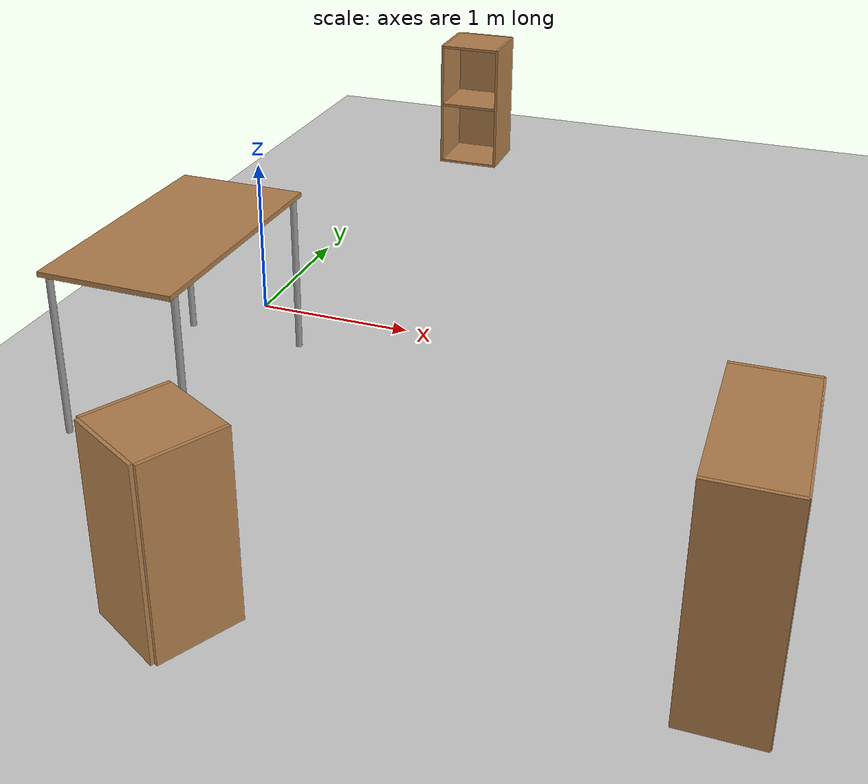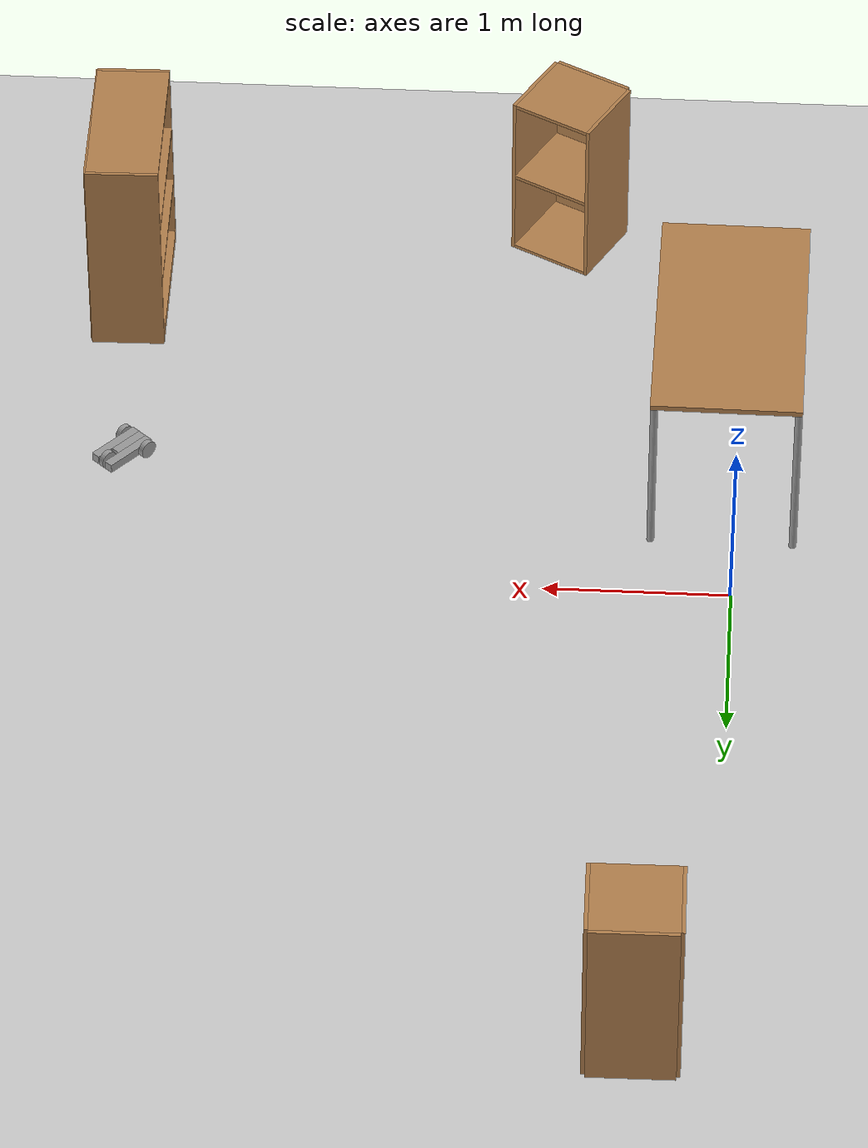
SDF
<sdf version="1.6">
 <world name="default">
  <model name="ground_plane">
   <static>1</static>
   <link name="link">
    <collision name="collision">
     <geometry><plane><normal>0 0 1</normal><size>100 100</size></plane></geometry>
     <surface><friction><ode><mu>100</mu><mu2>50</mu2></ode></friction></surface>
    </collision>
    <visual name="visual">
     <cast_shadows>0</cast_shadows>
     <geometry><plane><normal>0 0 1</normal><size>100 100</size></plane></geometry>
     <material>
      <script><uri>file://media/materials/scripts/gazebo.material</uri><name>Gazebo/Grey</name></script>
     </material>
    </visual>
   </link>
  </model>
  <model name="table">
   <static>1</static>
   <link name="link">
    <collision name="surface">
     <pose>0 0 1 0 -0 0</pose>
     <geometry><box><size>1.5 0.8 0.03</size></box></geometry>
     <surface><friction><ode><mu>0.6</mu><mu2>0.6</mu2></ode></friction></surface>
    </collision>
    <visual name="visual1">
     <pose>0 0 1 0 -0 0</pose>
     <geometry><box><size>1.5 0.8 0.03</size></box></geometry>
     <material>
      <script><uri>file://media/materials/scripts/gazebo.material</uri><name>Gazebo/Wood</name></script>
     </material>
    </visual>
    <collision name="front_left_leg">
     <pose>0.68 0.38 0.5 0 -0 0</pose>
     <geometry><cylinder><radius>0.02</radius><length>1</length></cylinder></geometry>
    </collision>
    <visual name="front_left_leg">
     <pose>0.68 0.38 0.5 0 -0 0</pose>
     <geometry><cylinder><radius>0.02</radius><length>1</length></cylinder></geometry>
     <material>
      <script><uri>file://media/materials/scripts/gazebo.material</uri><name>Gazebo/Grey</name></script>
     </material>
    </visual>
    <collision name="front_right_leg">
     <pose>0.68 -0.38 0.5 0 -0 0</pose>
     <geometry><cylinder><radius>0.02</radius><length>1</length></cylinder></geometry>
    </collision>
    <visual name="front_right_leg">
     <pose>0.68 -0.38 0.5 0 -0 0</pose>
     <geometry><cylinder><radius>0.02</radius><length>1</length></cylinder></geometry>
     <material>
      <script><uri>file://media/materials/scripts/gazebo.material</uri><name>Gazebo/Grey</name></script>
     </material>
    </visual>
    <collision name="back_right_leg">
     <pose>-0.68 -0.38 0.5 0 -0 0</pose>
     <geometry><cylinder><radius>0.02</radius><length>1</length></cylinder></geometry>
    </collision>
    <visual name="back_right_leg">
     <pose>-0.68 -0.38 0.5 0 -0 0</pose>
     <geometry><cylinder><radius>0.02</radius><length>1</length></cylinder></geometry>
     <material>
      <script><uri>file://media/materials/scripts/gazebo.material</uri><name>Gazebo/Grey</name></script>
     </material>
    </visual>
    <collision name="back_left_leg">
     <pose>-0.68 0.38 0.5 0 -0 0</pose>
     <geometry><cylinder><radius>0.02</radius><length>1</length></cylinder></geometry>
    </collision>
    <visual name="back_left_leg">
     <pose>-0.68 0.38 0.5 0 -0 0</pose>
     <geometry><cylinder><radius>0.02</radius><length>1</length></cylinder></geometry>
     <material>
      <script><uri>file://media/materials/scripts/gazebo.material</uri><name>Gazebo/Grey</name></script>
     </material>
    </visual>
   </link>
   <pose>0.053466 -1.09473 0 0 0 -1.58225</pose>
  </model>
  <model name="bookshelf">
   <static>1</static>
   <link name="link">
    <inertial><mass>1</mass></inertial>
    <collision name="back">
     <pose>0 0.005 0.6 0 -0 0</pose>
     <geometry><box><size>0.9 0.01 1.2</size></box></geometry>
    </collision>
    <visual name="visual1">
     <pose>0 0.005 0.6 0 -0 0</pose>
     <geometry><box><size>0.9 0.01 1.2</size></box></geometry>
     <material>
      <script><uri>file://media/materials/scripts/gazebo.material</uri><name>Gazebo/Wood</name></script>
     </material>
    </visual>
    <collision name="left_side">
     <pose>0.45 -0.195 0.6 0 -0 0</pose>
     <geometry><box><size>0.02 0.4 1.2</size></box></geometry>
    </collision>
    <visual name="visual2">
     <pose>0.45 -0.195 0.6 0 -0 0</pose>
     <geometry><box><size>0.02 0.4 1.2</size></box></geometry>
     <material>
      <script><uri>file://media/materials/scripts/gazebo.material</uri><name>Gazebo/Wood</name></script>
     </material>
    </visual>
    <collision name="right_side">
     <pose>-0.45 -0.195 0.6 0 -0 0</pose>
     <geometry><box><size>0.02 0.4 1.2</size></box></geometry>
    </collision>
    <visual name="visual3">
     <pose>-0.45 -0.195 0.6 0 -0 0</pose>
     <geometry><box><size>0.02 0.4 1.2</size></box></geometry>
     <material>
      <script><uri>file://media/materials/scripts/gazebo.material</uri><name>Gazebo/Wood</name></script>
     </material>
    </visual>
    <collision name="bottom">
     <pose>0 -0.195 0.03 0 -0 0</pose>
     <geometry><box><size>0.88 0.4 0.06</size></box></geometry>
    </collision>
    <visual name="visual4">
     <pose>0 -0.195 0.03 0 -0 0</pose>
     <geometry><box><size>0.88 0.4 0.06</size></box></geometry>
     <material>
      <script><uri>file://media/materials/scripts/gazebo.material</uri><name>Gazebo/Wood</name></script>
     </material>
    </visual>
    <collision name="top">
     <pose>0 -0.195 1.19 0 -0 0</pose>
     <geometry><box><size>0.88 0.4 0.02</size></box></geometry>
    </collision>
    <visual name="visual5">
     <pose>0 -0.195 1.19 0 -0 0</pose>
     <geometry><box><size>0.88 0.4 0.02</size></box></geometry>
     <material>
      <script><uri>file://media/materials/scripts/gazebo.material</uri><name>Gazebo/Wood</name></script>
     </material>
    </visual>
    <collision name="low_shelf">
     <pose>0 -0.195 0.43 0 -0 0</pose>
     <geometry><box><size>0.88 0.4 0.02</size></box></geometry>
    </collision>
    <visual name="visual6">
     <pose>0 -0.195 0.43 0 -0 0</pose>
     <geometry><box><size>0.88 0.4 0.02</size></box></geometry>
     <material>
      <script><uri>file://media/materials/scripts/gazebo.material</uri><name>Gazebo/Wood</name></script>
     </material>
    </visual>
    <collision name="high_shelf">
     <pose>0 -0.195 0.8 0 -0 0</pose>
     <geometry><box><size>0.88 0.4 0.02</size></box></geometry>
    </collision>
    <visual name="visual7">
     <pose>0 -0.195 0.8 0 -0 0</pose>
     <geometry><box><size>0.88 0.4 0.02</size></box></geometry>
     <material>
      <script><uri>file://media/materials/scripts/gazebo.material</uri><name>Gazebo/Wood</name></script>
     </material>
    </visual>
   </link>
   <pose>3.58099 -2.31658 0 0 0 -1.55277</pose>
  </model>
  <model name="tricycle_0">
   <link name="link_0_clone">
    <pose>0.05011 -0.0238 0 0 -0 0</pose>
    <inertial>
     <mass>1</mass>
     <inertia>
      <ixx>0.166667</ixx>
      <ixy>0</ixy>
      <ixz>0</ixz>
      <iyy>0.166667</iyy>
      <iyz>0</iyz>
      <izz>0.166667</izz>
     </inertia>
    </inertial>
    <visual name="visual">
     <geometry><box><size>0.05 0.3 0.05</size></box></geometry>
     <material>
      <lighting>1</lighting>
      <script><uri>file://media/materials/scripts/gazebo.material</uri><name>Gazebo/Grey</name></script>
      <shader type="pixel"><normal_map>__default__</normal_map></shader>
      <ambient>0.3 0.3 0.3 1</ambient>
      <diffuse>0.7 0.7 0.7 1</diffuse>
      <specular>0.01 0.01 0.01 1</specular>
      <emissive>0 0 0 1</emissive>
     </material>
    </visual>
    <collision name="collision">
     <geometry><box><size>0.05 0.3 0.05</size></box></geometry>
     <surface>
      <friction>
       <ode><mu>1</mu><mu2>1</mu2><fdir1>0 0 0</fdir1><slip1>0</slip1><slip2>0</slip2></ode>
       <torsional>
        <coefficient>1</coefficient>
        <patch_radius>0</patch_radius>
        <surface_radius>0</surface_radius>
        <use_patch_radius>1</use_patch_radius>
        <ode><slip>0</slip></ode>
       </torsional>
      </friction>
      <bounce><restitution_coefficient>0</restitution_coefficient><threshold>1e+06</threshold></bounce>
      <contact>
       <collide_without_contact>0</collide_without_contact>
       <collide_without_contact_bitmask>1</collide_without_contact_bitmask>
       <collide_bitmask>1</collide_bitmask>
       <ode>
        <soft_cfm>0</soft_cfm>
        <soft_erp>0.2</soft_erp>
        <kp>1e+13</kp>
        <kd>1</kd>
        <max_vel>0.01</max_vel>
        <min_depth>0</min_depth>
       </ode>
       <bullet>
        <split_impulse>1</split_impulse>
        <split_impulse_penetration_threshold>-0.01</split_impulse_penetration_threshold>
        <soft_cfm>0</soft_cfm>
        <soft_erp>0.2</soft_erp>
        <kp>1e+13</kp>
        <kd>1</kd>
       </bullet>
      </contact>
     </surface>
    </collision>
   </link>
   <link name="link_0_clone_0">
    <pose>0.00011 0.0262 0 0 -0 0</pose>
    <inertial>
     <mass>1</mass>
     <inertia>
      <ixx>0.166667</ixx>
      <ixy>0</ixy>
      <ixz>0</ixz>
      <iyy>0.166667</iyy>
      <iyz>0</iyz>
      <izz>0.166667</izz>
     </inertia>
    </inertial>
    <visual name="visual">
     <geometry><box><size>0.05 0.2 0.05</size></box></geometry>
     <material>
      <lighting>1</lighting>
      <script><uri>file://media/materials/scripts/gazebo.material</uri><name>Gazebo/Grey</name></script>
      <shader type="pixel"><normal_map>__default__</normal_map></shader>
      <ambient>0.3 0.3 0.3 1</ambient>
      <diffuse>0.7 0.7 0.7 1</diffuse>
      <specular>0.01 0.01 0.01 1</specular>
      <emissive>0 0 0 1</emissive>
     </material>
    </visual>
    <collision name="collision">
     <geometry><box><size>0.05 0.2 0.05</size></box></geometry>
     <surface>
      <friction>
       <ode><mu>1</mu><mu2>1</mu2><fdir1>0 0 0</fdir1><slip1>0</slip1><slip2>0</slip2></ode>
       <torsional>
        <coefficient>1</coefficient>
        <patch_radius>0</patch_radius>
        <surface_radius>0</surface_radius>
        <use_patch_radius>1</use_patch_radius>
        <ode><slip>0</slip></ode>
       </torsional>
      </friction>
      <bounce><restitution_coefficient>0</restitution_coefficient><threshold>1e+06</threshold></bounce>
      <contact>
       <collide_without_contact>0</collide_without_contact>
       <collide_without_contact_bitmask>1</collide_without_contact_bitmask>
       <collide_bitmask>1</collide_bitmask>
       <ode>
        <soft_cfm>0</soft_cfm>
        <soft_erp>0.2</soft_erp>
        <kp>1e+13</kp>
        <kd>1</kd>
        <max_vel>0.01</max_vel>
        <min_depth>0</min_depth>
       </ode>
       <bullet>
        <split_impulse>1</split_impulse>
        <split_impulse_penetration_threshold>-0.01</split_impulse_penetration_threshold>
        <soft_cfm>0</soft_cfm>
        <soft_erp>0.2</soft_erp>
        <kp>1e+13</kp>
        <kd>1</kd>
       </bullet>
      </contact>
     </surface>
    </collision>
   </link>
   <link name="link_0_clone_clone">
    <pose>-0.04989 -0.0238 0 0 -0 0</pose>
    <inertial>
     <mass>1</mass>
     <inertia>
      <ixx>0.166667</ixx>
      <ixy>0</ixy>
      <ixz>0</ixz>
      <iyy>0.166667</iyy>
      <iyz>0</iyz>
      <izz>0.166667</izz>
     </inertia>
    </inertial>
    <visual name="visual">
     <geometry><box><size>0.05 0.3 0.05</size></box></geometry>
     <material>
      <lighting>1</lighting>
      <script><uri>file://media/materials/scripts/gazebo.material</uri><name>Gazebo/Grey</name></script>
      <shader type="pixel"><normal_map>__default__</normal_map></shader>
      <ambient>0.3 0.3 0.3 1</ambient>
      <diffuse>0.7 0.7 0.7 1</diffuse>
      <specular>0.01 0.01 0.01 1</specular>
      <emissive>0 0 0 1</emissive>
     </material>
    </visual>
    <collision name="collision">
     <geometry><box><size>0.05 0.3 0.05</size></box></geometry>
     <surface>
      <friction>
       <ode><mu>1</mu><mu2>1</mu2><fdir1>0 0 0</fdir1><slip1>0</slip1><slip2>0</slip2></ode>
       <torsional>
        <coefficient>1</coefficient>
        <patch_radius>0</patch_radius>
        <surface_radius>0</surface_radius>
        <use_patch_radius>1</use_patch_radius>
        <ode><slip>0</slip></ode>
       </torsional>
      </friction>
      <bounce><restitution_coefficient>0</restitution_coefficient><threshold>1e+06</threshold></bounce>
      <contact>
       <collide_without_contact>0</collide_without_contact>
       <collide_without_contact_bitmask>1</collide_without_contact_bitmask>
       <collide_bitmask>1</collide_bitmask>
       <ode>
        <soft_cfm>0</soft_cfm>
        <soft_erp>0.2</soft_erp>
        <kp>1e+13</kp>
        <kd>1</kd>
        <max_vel>0.01</max_vel>
        <min_depth>0</min_depth>
       </ode>
       <bullet>
        <split_impulse>1</split_impulse>
        <split_impulse_penetration_threshold>-0.01</split_impulse_penetration_threshold>
        <soft_cfm>0</soft_cfm>
        <soft_erp>0.2</soft_erp>
        <kp>1e+13</kp>
        <kd>1</kd>
       </bullet>
      </contact>
     </surface>
    </collision>
   </link>
   <link name="link_1">
    <pose>-0.000551 -0.131 0 0 -0 0</pose>
    <inertial>
     <mass>1</mass>
     <inertia><ixx>0.145833</ixx><ixy>0</ixy><ixz>0</ixz><iyy>0.145833</iyy><iyz>0</iyz><izz>0.125</izz></inertia>
    </inertial>
    <visual name="visual">
     <pose>0 0 0 0 1.5707 0</pose>
     <geometry><cylinder><radius>0.05</radius><length>0.03</length></cylinder></geometry>
     <material>
      <lighting>1</lighting>
      <script><uri>file://media/materials/scripts/gazebo.material</uri><name>Gazebo/Grey</name></script>
      <shader type="pixel"><normal_map>__default__</normal_map></shader>
      <ambient>0.3 0.3 0.3 1</ambient>
      <diffuse>0.7 0.7 0.7 1</diffuse>
      <specular>0.01 0.01 0.01 1</specular>
      <emissive>0 0 0 1</emissive>
     </material>
    </visual>
    <collision name="collision">
     <pose>0 0 0 0 1.5707 0</pose>
     <geometry><cylinder><radius>0.05</radius><length>0.03</length></cylinder></geometry>
     <surface>
      <friction>
       <ode><mu>1</mu><mu2>1</mu2><fdir1>0 0 0</fdir1><slip1>0</slip1><slip2>0</slip2></ode>
       <torsional>
        <coefficient>1</coefficient>
        <patch_radius>0</patch_radius>
        <surface_radius>0</surface_radius>
        <use_patch_radius>1</use_patch_radius>
        <ode><slip>0</slip></ode>
       </torsional>
      </friction>
      <bounce><restitution_coefficient>0</restitution_coefficient><threshold>1e+06</threshold></bounce>
      <contact>
       <collide_without_contact>0</collide_without_contact>
       <collide_without_contact_bitmask>1</collide_without_contact_bitmask>
       <collide_bitmask>1</collide_bitmask>
       <ode>
        <soft_cfm>0</soft_cfm>
        <soft_erp>0.2</soft_erp>
        <kp>1e+13</kp>
        <kd>1</kd>
        <max_vel>0.01</max_vel>
        <min_depth>0</min_depth>
       </ode>
       <bullet>
        <split_impulse>1</split_impulse>
        <split_impulse_penetration_threshold>-0.01</split_impulse_penetration_threshold>
        <soft_cfm>0</soft_cfm>
        <soft_erp>0.2</soft_erp>
        <kp>1e+13</kp>
        <kd>1</kd>
       </bullet>
      </contact>
     </surface>
    </collision>
   </link>
   <link name="link_1_clone">
    <pose>0.090114 0.0762 0 0 -0 0</pose>
    <inertial>
     <mass>1</mass>
     <inertia><ixx>0.145833</ixx><ixy>0</ixy><ixz>0</ixz><iyy>0.145833</iyy><iyz>0</iyz><izz>0.125</izz></inertia>
    </inertial>
    <visual name="visual">
     <pose>0 0 0 0 1.5707 0</pose>
     <geometry><cylinder><radius>0.05</radius><length>0.03</length></cylinder></geometry>
     <material>
      <lighting>1</lighting>
      <script><uri>file://media/materials/scripts/gazebo.material</uri><name>Gazebo/Grey</name></script>
      <shader type="pixel"><normal_map>__default__</normal_map></shader>
      <ambient>0.3 0.3 0.3 1</ambient>
      <diffuse>0.7 0.7 0.7 1</diffuse>
      <specular>0.01 0.01 0.01 1</specular>
      <emissive>0 0 0 1</emissive>
     </material>
    </visual>
    <collision name="collision">
     <pose>0 0 0 0 1.5707 0</pose>
     <geometry><cylinder><radius>0.05</radius><length>0.03</length></cylinder></geometry>
     <surface>
      <friction>
       <ode><mu>1</mu><mu2>1</mu2><fdir1>0 0 0</fdir1><slip1>0</slip1><slip2>0</slip2></ode>
       <torsional>
        <coefficient>1</coefficient>
        <patch_radius>0</patch_radius>
        <surface_radius>0</surface_radius>
        <use_patch_radius>1</use_patch_radius>
        <ode><slip>0</slip></ode>
       </torsional>
      </friction>
      <bounce><restitution_coefficient>0</restitution_coefficient><threshold>1e+06</threshold></bounce>
      <contact>
       <collide_without_contact>0</collide_without_contact>
       <collide_without_contact_bitmask>1</collide_without_contact_bitmask>
       <collide_bitmask>1</collide_bitmask>
       <ode>
        <soft_cfm>0</soft_cfm>
        <soft_erp>0.2</soft_erp>
        <kp>1e+13</kp>
        <kd>1</kd>
        <max_vel>0.01</max_vel>
        <min_depth>0</min_depth>
       </ode>
       <bullet>
        <split_impulse>1</split_impulse>
        <split_impulse_penetration_threshold>-0.01</split_impulse_penetration_threshold>
        <soft_cfm>0</soft_cfm>
        <soft_erp>0.2</soft_erp>
        <kp>1e+13</kp>
        <kd>1</kd>
       </bullet>
      </contact>
     </surface>
    </collision>
   </link>
   <link name="link_1_clone_0">
    <pose>-0.089895 0.0762 0 0 -0 0</pose>
    <inertial>
     <mass>1</mass>
     <inertia><ixx>0.145833</ixx><ixy>0</ixy><ixz>0</ixz><iyy>0.145833</iyy><iyz>0</iyz><izz>0.125</izz></inertia>
    </inertial>
    <visual name="visual">
     <pose>0 0 0 0 1.5707 0</pose>
     <geometry><cylinder><radius>0.05</radius><length>0.03</length></cylinder></geometry>
     <material>
      <lighting>1</lighting>
      <script><uri>file://media/materials/scripts/gazebo.material</uri><name>Gazebo/Grey</name></script>
      <shader type="pixel"><normal_map>__default__</normal_map></shader>
      <ambient>0.3 0.3 0.3 1</ambient>
      <diffuse>0.7 0.7 0.7 1</diffuse>
      <specular>0.01 0.01 0.01 1</specular>
      <emissive>0 0 0 1</emissive>
     </material>
    </visual>
    <collision name="collision">
     <pose>0 0 0 0 1.5707 0</pose>
     <geometry><cylinder><radius>0.05</radius><length>0.03</length></cylinder></geometry>
     <surface>
      <friction>
       <ode><mu>1</mu><mu2>1</mu2><fdir1>0 0 0</fdir1><slip1>0</slip1><slip2>0</slip2></ode>
       <torsional>
        <coefficient>1</coefficient>
        <patch_radius>0</patch_radius>
        <surface_radius>0</surface_radius>
        <use_patch_radius>1</use_patch_radius>
        <ode><slip>0</slip></ode>
       </torsional>
      </friction>
      <bounce><restitution_coefficient>0</restitution_coefficient><threshold>1e+06</threshold></bounce>
      <contact>
       <collide_without_contact>0</collide_without_contact>
       <collide_without_contact_bitmask>1</collide_without_contact_bitmask>
       <collide_bitmask>1</collide_bitmask>
       <ode>
        <soft_cfm>0</soft_cfm>
        <soft_erp>0.2</soft_erp>
        <kp>1e+13</kp>
        <kd>1</kd>
        <max_vel>0.01</max_vel>
        <min_depth>0</min_depth>
       </ode>
       <bullet>
        <split_impulse>1</split_impulse>
        <split_impulse_penetration_threshold>-0.01</split_impulse_penetration_threshold>
        <soft_cfm>0</soft_cfm>
        <soft_erp>0.2</soft_erp>
        <kp>1e+13</kp>
        <kd>1</kd>
       </bullet>
      </contact>
     </surface>
    </collision>
   </link>
   <joint name="link_0_clone_0_JOINT_0" type="fixed">
    <parent>link_0_clone_0</parent>
    <child>link_0_clone</child>
    <physics>
     <ode><limit><cfm>0</cfm><erp>0.2</erp></limit><suspension><cfm>0</cfm><erp>0.2</erp></suspension></ode>
    </physics>
   </joint>
   <joint name="link_0_clone_0_JOINT_2" type="fixed">
    <parent>link_0_clone_0</parent>
    <child>link_0_clone_clone</child>
    <physics>
     <ode><limit><cfm>0</cfm><erp>0.2</erp></limit><suspension><cfm>0</cfm><erp>0.2</erp></suspension></ode>
    </physics>
   </joint>
   <joint name="link_0_clone_JOINT_3" type="revolute">
    <parent>link_0_clone</parent>
    <child>link_1</child>
    <axis>
     <xyz>1 0 0</xyz>
     <use_parent_model_frame>0</use_parent_model_frame>
     <limit>
      <lower>-1.79769e+308</lower>
      <upper>1.79769e+308</upper>
      <effort>-1</effort>
      <velocity>-1</velocity>
     </limit>
     <dynamics>
      <spring_reference>0</spring_reference>
      <spring_stiffness>0</spring_stiffness>
      <damping>0</damping>
     </dynamics>
    </axis>
    <physics>
     <ode><limit><cfm>0</cfm><erp>0.2</erp></limit><suspension><cfm>0</cfm><erp>0.2</erp></suspension></ode>
    </physics>
   </joint>
   <joint name="link_0_clone_JOINT_4" type="revolute">
    <parent>link_0_clone</parent>
    <child>link_1_clone</child>
    <axis>
     <xyz>1 0 0</xyz>
     <use_parent_model_frame>0</use_parent_model_frame>
     <limit>
      <lower>-1.79769e+308</lower>
      <upper>1.79769e+308</upper>
      <effort>-1</effort>
      <velocity>-1</velocity>
     </limit>
     <dynamics>
      <spring_reference>0</spring_reference>
      <spring_stiffness>0</spring_stiffness>
      <damping>0</damping>
     </dynamics>
    </axis>
    <physics>
     <ode><limit><cfm>0</cfm><erp>0.2</erp></limit><suspension><cfm>0</cfm><erp>0.2</erp></suspension></ode>
    </physics>
   </joint>
   <joint name="link_0_clone_clone_JOINT_5" type="revolute">
    <parent>link_0_clone_clone</parent>
    <child>link_1_clone_0</child>
    <axis>
     <xyz>1 0 0</xyz>
     <use_parent_model_frame>0</use_parent_model_frame>
     <limit>
      <lower>-1.79769e+308</lower>
      <upper>1.79769e+308</upper>
      <effort>-1</effort>
      <velocity>-1</velocity>
     </limit>
     <dynamics>
      <spring_reference>0</spring_reference>
      <spring_stiffness>0</spring_stiffness>
      <damping>0</damping>
     </dynamics>
    </axis>
    <physics>
     <ode><limit><cfm>0</cfm><erp>0.2</erp></limit><suspension><cfm>0</cfm><erp>0.2</erp></suspension></ode>
    </physics>
   </joint>
   <static>0</static>
   <pose>3.30503 -0.938399 0.050001 4e-06 1.6e-05 2.41616</pose>
  </model>
  <model name="cabinet">
   <static>1</static>
   <link name="cabinet_bottom_plate">
    <inertial>
     <pose>0 0 -1 0 -0 0</pose>
     <inertia><ixx>2.05</ixx><ixy>0</ixy><ixz>0</ixz><iyy>2.05</iyy><iyz>0</iyz><izz>2.05</izz></inertia>
     <mass>25</mass>
    </inertial>
    <collision name="cabinet_bottom_plate_geom">
     <pose>0 0 0.01 0 -0 0</pose>
     <geometry><box><size>0.45 0.45 0.02</size></box></geometry>
    </collision>
    <visual name="cabinet_bottom_plate_geom_visual">
     <pose>0 0 0.01 0 -0 0</pose>
     <geometry><box><size>0.45 0.45 0.02</size></box></geometry>
     <material>
      <script><uri>file://media/materials/scripts/gazebo.material</uri><name>Gazebo/Wood</name></script>
     </material>
    </visual>
    <collision name="cabinet_bottom_plate_geom_cabinet_back_plate">
     <pose>0.235 0 0.51 0 -0 0</pose>
     <geometry><box><size>0.02 0.45 1.02</size></box></geometry>
    </collision>
    <visual name="cabinet_bottom_plate_geom_cabinet_back_plate_visual">
     <pose>0.235 0 0.51 0 -0 0</pose>
     <geometry><box><size>0.02 0.45 1.02</size></box></geometry>
     <material>
      <script><uri>file://media/materials/scripts/gazebo.material</uri><name>Gazebo/Wood</name></script>
     </material>
    </visual>
    <collision name="cabinet_bottom_plate_geom_cabinet_left_plate">
     <pose>0 0.235 0.51 0 -0 0</pose>
     <geometry><box><size>0.45 0.02 1.02</size></box></geometry>
    </collision>
    <visual name="cabinet_bottom_plate_geom_cabinet_left_plate_visual">
     <pose>0 0.235 0.51 0 -0 0</pose>
     <geometry><box><size>0.45 0.02 1.02</size></box></geometry>
     <material>
      <script><uri>file://media/materials/scripts/gazebo.material</uri><name>Gazebo/Wood</name></script>
     </material>
    </visual>
    <collision name="cabinet_bottom_plate_geom_cabinet_middle_plate">
     <pose>0 0 0.51 0 -0 0</pose>
     <geometry><box><size>0.45 0.45 0.02</size></box></geometry>
    </collision>
    <visual name="cabinet_bottom_plate_geom_cabinet_middle_plate_visual">
     <pose>0 0 0.51 0 -0 0</pose>
     <geometry><box><size>0.45 0.45 0.02</size></box></geometry>
     <material>
      <script><uri>file://media/materials/scripts/gazebo.material</uri><name>Gazebo/Wood</name></script>
     </material>
    </visual>
    <collision name="cabinet_bottom_plate_geom_cabinet_right_plate">
     <pose>0 -0.235 0.51 0 -0 0</pose>
     <geometry><box><size>0.45 0.02 1.02</size></box></geometry>
    </collision>
    <visual name="cabinet_bottom_plate_geom_cabinet_right_plate_visual">
     <pose>0 -0.235 0.51 0 -0 0</pose>
     <geometry><box><size>0.45 0.02 1.02</size></box></geometry>
     <material>
      <script><uri>file://media/materials/scripts/gazebo.material</uri><name>Gazebo/Wood</name></script>
     </material>
    </visual>
    <collision name="cabinet_bottom_plate_geom_cabinet_top_plate">
     <pose>0 0 1.01 0 -0 0</pose>
     <geometry><box><size>0.45 0.45 0.02</size></box></geometry>
    </collision>
    <visual name="cabinet_bottom_plate_geom_cabinet_top_plate_visual">
     <pose>0 0 1.01 0 -0 0</pose>
     <geometry><box><size>0.45 0.45 0.02</size></box></geometry>
     <material>
      <script><uri>file://media/materials/scripts/gazebo.material</uri><name>Gazebo/Wood</name></script>
     </material>
    </visual>
   </link>
   <pose>0.411324 3.23701 0 0 -0 1.58026</pose>
  </model>
  <model name="cabinet_0">
   <static>1</static>
   <link name="cabinet_bottom_plate">
    <inertial>
     <pose>0 0 -1 0 -0 0</pose>
     <inertia><ixx>2.05</ixx><ixy>0</ixy><ixz>0</ixz><iyy>2.05</iyy><iyz>0</iyz><izz>2.05</izz></inertia>
     <mass>25</mass>
    </inertial>
    <collision name="cabinet_bottom_plate_geom">
     <pose>0 0 0.01 0 -0 0</pose>
     <geometry><box><size>0.45 0.45 0.02</size></box></geometry>
    </collision>
    <visual name="cabinet_bottom_plate_geom_visual">
     <pose>0 0 0.01 0 -0 0</pose>
     <geometry><box><size>0.45 0.45 0.02</size></box></geometry>
     <material>
      <script><uri>file://media/materials/scripts/gazebo.material</uri><name>Gazebo/Wood</name></script>
     </material>
    </visual>
    <collision name="cabinet_bottom_plate_geom_cabinet_back_plate">
     <pose>0.235 0 0.51 0 -0 0</pose>
     <geometry><box><size>0.02 0.45 1.02</size></box></geometry>
    </collision>
    <visual name="cabinet_bottom_plate_geom_cabinet_back_plate_visual">
     <pose>0.235 0 0.51 0 -0 0</pose>
     <geometry><box><size>0.02 0.45 1.02</size></box></geometry>
     <material>
      <script><uri>file://media/materials/scripts/gazebo.material</uri><name>Gazebo/Wood</name></script>
     </material>
    </visual>
    <collision name="cabinet_bottom_plate_geom_cabinet_left_plate">
     <pose>0 0.235 0.51 0 -0 0</pose>
     <geometry><box><size>0.45 0.02 1.02</size></box></geometry>
    </collision>
    <visual name="cabinet_bottom_plate_geom_cabinet_left_plate_visual">
     <pose>0 0.235 0.51 0 -0 0</pose>
     <geometry><box><size>0.45 0.02 1.02</size></box></geometry>
     <material>
      <script><uri>file://media/materials/scripts/gazebo.material</uri><name>Gazebo/Wood</name></script>
     </material>
    </visual>
    <collision name="cabinet_bottom_plate_geom_cabinet_middle_plate">
     <pose>0 0 0.51 0 -0 0</pose>
     <geometry><box><size>0.45 0.45 0.02</size></box></geometry>
    </collision>
    <visual name="cabinet_bottom_plate_geom_cabinet_middle_plate_visual">
     <pose>0 0 0.51 0 -0 0</pose>
     <geometry><box><size>0.45 0.45 0.02</size></box></geometry>
     <material>
      <script><uri>file://media/materials/scripts/gazebo.material</uri><name>Gazebo/Wood</name></script>
     </material>
    </visual>
    <collision name="cabinet_bottom_plate_geom_cabinet_right_plate">
     <pose>0 -0.235 0.51 0 -0 0</pose>
     <geometry><box><size>0.45 0.02 1.02</size></box></geometry>
    </collision>
    <visual name="cabinet_bottom_plate_geom_cabinet_right_plate_visual">
     <pose>0 -0.235 0.51 0 -0 0</pose>
     <geometry><box><size>0.45 0.02 1.02</size></box></geometry>
     <material>
      <script><uri>file://media/materials/scripts/gazebo.material</uri><name>Gazebo/Wood</name></script>
     </material>
    </visual>
    <collision name="cabinet_bottom_plate_geom_cabinet_top_plate">
     <pose>0 0 1.01 0 -0 0</pose>
     <geometry><box><size>0.45 0.45 0.02</size></box></geometry>
    </collision>
    <visual name="cabinet_bottom_plate_geom_cabinet_top_plate_visual">
     <pose>0 0 1.01 0 -0 0</pose>
     <geometry><box><size>0.45 0.45 0.02</size></box></geometry>
     <material>
      <script><uri>file://media/materials/scripts/gazebo.material</uri><name>Gazebo/Wood</name></script>
     </material>
    </visual>
   </link>
   <pose>0.979216 -2.89197 0 0 0 -2.06677</pose>
  </model>
 </world>
</sdf>
